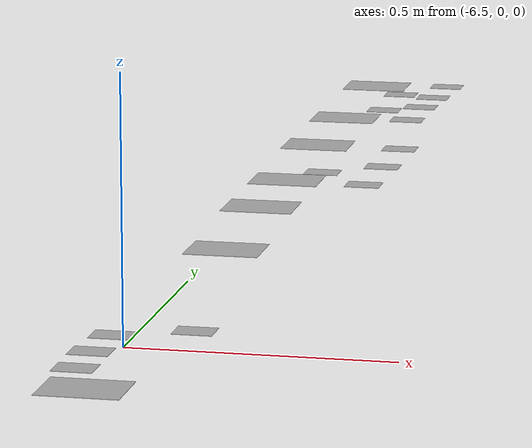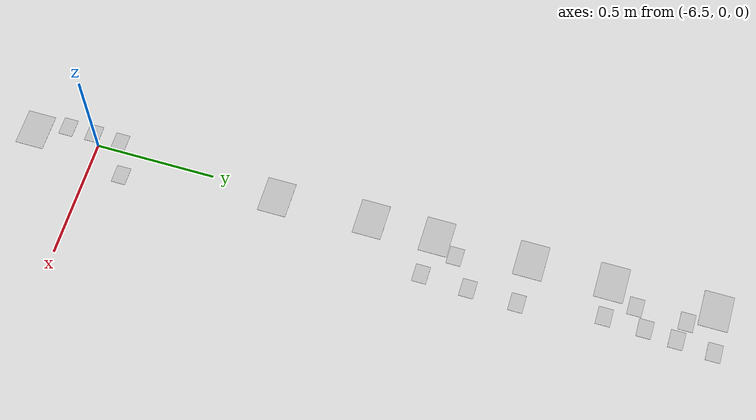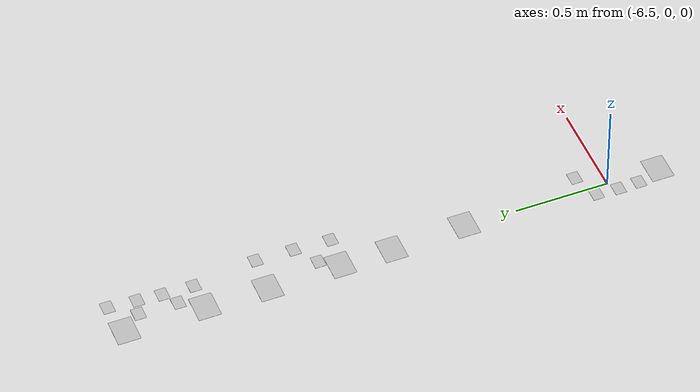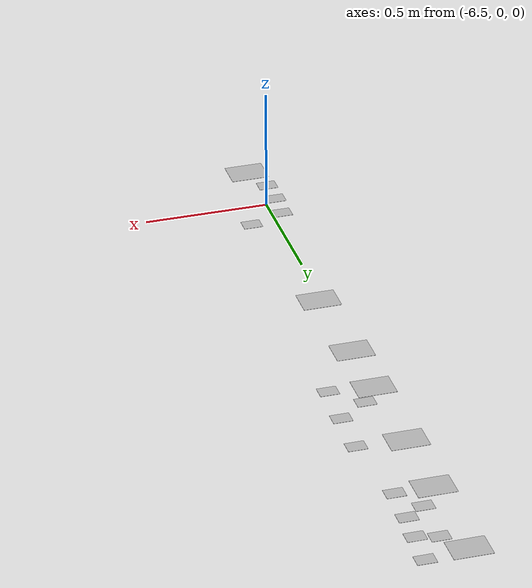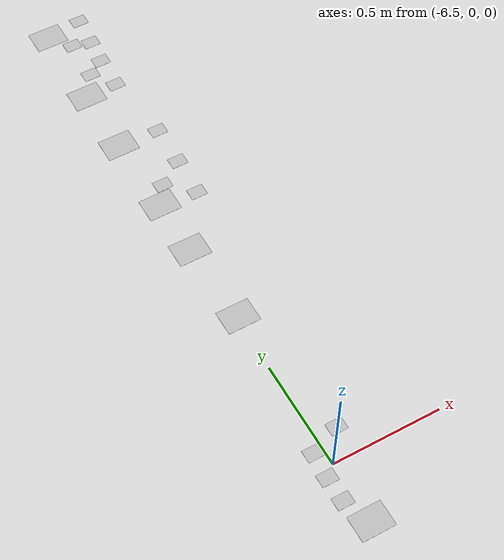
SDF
<sdf version="1.4">
 <world name="default">
  <model name="atags4_0">
   <static>1</static>
   <link name="link">
    <collision name="collision"><geometry><box><size>0.15275 0.11825 0.001</size></box></geometry></collision>
    <visual name="visual">
     <geometry><box><size>0.15275 0.11825 0.001</size></box></geometry>
     <material>
      <script>
       <uri>model://atags4_0/materials/scripts</uri>
       <uri>model://atags4_0/materials/textures</uri>
       <name>atags4_0/Diffuse</name>
      </script>
     </material>
    </visual>
    <velocity_decay><linear>0</linear><angular>0</angular></velocity_decay>
   </link>
   <pose>-6.50739 1.83276 0 0 -0 0</pose>
  </model>
  <model name="atags4_2">
   <static>1</static>
   <link name="link">
    <collision name="collision"><geometry><box><size>0.15275 0.11825 0.001</size></box></geometry></collision>
    <visual name="visual">
     <geometry><box><size>0.15275 0.11825 0.001</size></box></geometry>
     <material>
      <script>
       <uri>model://atags4_2/materials/scripts</uri>
       <uri>model://atags4_2/materials/textures</uri>
       <name>atags4_2/Diffuse</name>
      </script>
     </material>
    </visual>
    <velocity_decay><linear>0</linear><angular>0</angular></velocity_decay>
   </link>
   <pose>-6.50379 2.57978 0 0 -0 0</pose>
  </model>
  <model name="atags4_10">
   <static>1</static>
   <link name="link">
    <collision name="collision"><geometry><box><size>0.15275 0.11825 0.001</size></box></geometry></collision>
    <visual name="visual">
     <geometry><box><size>0.15275 0.11825 0.001</size></box></geometry>
     <material>
      <script>
       <uri>model://atags4_10/materials/scripts</uri>
       <uri>model://atags4_10/materials/textures</uri>
       <name>atags4_10/Diffuse</name>
      </script>
     </material>
    </visual>
    <velocity_decay><linear>0</linear><angular>0</angular></velocity_decay>
   </link>
   <pose>-6.48634 0.776049 0 0 -0 0</pose>
  </model>
  <model name="atags4_11">
   <static>1</static>
   <link name="link">
    <collision name="collision"><geometry><box><size>0.15275 0.11825 0.001</size></box></geometry></collision>
    <visual name="visual">
     <geometry><box><size>0.15275 0.11825 0.001</size></box></geometry>
     <material>
      <script>
       <uri>model://atags4_11/materials/scripts</uri>
       <uri>model://atags4_11/materials/textures</uri>
       <name>atags4_11/Diffuse</name>
      </script>
     </material>
    </visual>
    <velocity_decay><linear>0</linear><angular>0</angular></velocity_decay>
   </link>
   <pose>-6.50017 1.17166 0 0 -0 0</pose>
  </model>
  <model name="atags4_12">
   <static>1</static>
   <link name="link">
    <collision name="collision"><geometry><box><size>0.15275 0.11825 0.001</size></box></geometry></collision>
    <visual name="visual">
     <geometry><box><size>0.15275 0.11825 0.001</size></box></geometry>
     <material>
      <script>
       <uri>model://atags4_12/materials/scripts</uri>
       <uri>model://atags4_12/materials/textures</uri>
       <name>atags4_12/Diffuse</name>
      </script>
     </material>
    </visual>
    <velocity_decay><linear>0</linear><angular>0</angular></velocity_decay>
   </link>
   <pose>-6.49772 -0.276388 0 0 -0 0</pose>
  </model>
  <model name="atags4_13">
   <static>1</static>
   <link name="link">
    <collision name="collision"><geometry><box><size>0.15275 0.11825 0.001</size></box></geometry></collision>
    <visual name="visual">
     <geometry><box><size>0.15275 0.11825 0.001</size></box></geometry>
     <material>
      <script>
       <uri>model://atags4_13/materials/scripts</uri>
       <uri>model://atags4_13/materials/textures</uri>
       <name>atags4_13/Diffuse</name>
      </script>
     </material>
    </visual>
    <velocity_decay><linear>0</linear><angular>0</angular></velocity_decay>
   </link>
   <pose>-6.50576 2.16188 0 0 -0 0</pose>
  </model>
  <model name="atags4_15">
   <static>1</static>
   <link name="link">
    <collision name="collision"><geometry><box><size>0.15275 0.11825 0.001</size></box></geometry></collision>
    <visual name="visual">
     <geometry><box><size>0.15275 0.11825 0.001</size></box></geometry>
     <material>
      <script>
       <uri>model://atags4_15/materials/scripts</uri>
       <uri>model://atags4_15/materials/textures</uri>
       <name>atags4_15/Diffuse</name>
      </script>
     </material>
    </visual>
    <velocity_decay><linear>0</linear><angular>0</angular></velocity_decay>
   </link>
   <pose>-6.50057 1.44615 0 0 -0 0</pose>
  </model>
  <model name="at192">
   <static>1</static>
   <link name="link">
    <collision name="collision"><geometry><box><size>0.0763 0.05912 0.001</size></box></geometry></collision>
    <visual name="visual">
     <geometry><box><size>0.0763 0.05912 0.001</size></box></geometry>
     <material>
      <script>
       <uri>model://at192/materials/scripts</uri>
       <uri>model://at192/materials/textures</uri>
       <name>at192/Diffuse</name>
      </script>
     </material>
    </visual>
    <velocity_decay><linear>0</linear><angular>0</angular></velocity_decay>
   </link>
   <pose>-6.40019 0.136024 0 0 -0 0</pose>
  </model>
  <model name="at193">
   <static>1</static>
   <link name="link">
    <collision name="collision"><geometry><box><size>0.0763 0.05912 0.001</size></box></geometry></collision>
    <visual name="visual">
     <geometry><box><size>0.0763 0.05912 0.001</size></box></geometry>
     <material>
      <script>
       <uri>model://at193/materials/scripts</uri>
       <uri>model://at193/materials/textures</uri>
       <name>at193/Diffuse</name>
      </script>
     </material>
    </visual>
    <velocity_decay><linear>0</linear><angular>0</angular></velocity_decay>
   </link>
   <pose>-6.54768 -0.15111 0 0 -0 0</pose>
  </model>
  <model name="at207">
   <static>1</static>
   <link name="link">
    <collision name="collision"><geometry><box><size>0.0763 0.05912 0.001</size></box></geometry></collision>
    <visual name="visual">
     <geometry><box><size>0.0763 0.05912 0.001</size></box></geometry>
     <material>
      <script>
       <uri>model://at207/materials/scripts</uri>
       <uri>model://at207/materials/textures</uri>
       <name>at207/Diffuse</name>
      </script>
     </material>
    </visual>
    <velocity_decay><linear>0</linear><angular>0</angular></velocity_decay>
   </link>
   <pose>-6.54944 -0.038504 0 0 -0 0</pose>
  </model>
  <model name="at217">
   <static>1</static>
   <link name="link">
    <collision name="collision"><geometry><box><size>0.0763 0.05912 0.001</size></box></geometry></collision>
    <visual name="visual">
     <geometry><box><size>0.0763 0.05912 0.001</size></box></geometry>
     <material>
      <script>
       <uri>model://at217/materials/scripts</uri>
       <uri>model://at217/materials/textures</uri>
       <name>at217/Diffuse</name>
      </script>
     </material>
    </visual>
    <velocity_decay><linear>0</linear><angular>0</angular></velocity_decay>
   </link>
   <pose>-6.54183 0.079325 0 0 -0 0</pose>
  </model>
  <model name="at218">
   <static>1</static>
   <link name="link">
    <collision name="collision"><geometry><box><size>0.0763 0.05912 0.001</size></box></geometry></collision>
    <visual name="visual">
     <geometry><box><size>0.0763 0.05912 0.001</size></box></geometry>
     <material>
      <script>
       <uri>model://at218/materials/scripts</uri>
       <uri>model://at218/materials/textures</uri>
       <name>at218/Diffuse</name>
      </script>
     </material>
    </visual>
    <velocity_decay><linear>0</linear><angular>0</angular></velocity_decay>
   </link>
   <pose>-6.35594 2.16484 0 0 -0 0</pose>
  </model>
  <model name="at219">
   <static>1</static>
   <link name="link">
    <collision name="collision"><geometry><box><size>0.0763 0.05912 0.001</size></box></geometry></collision>
    <visual name="visual">
     <geometry><box><size>0.0763 0.05912 0.001</size></box></geometry>
     <material>
      <script>
       <uri>model://at219/materials/scripts</uri>
       <uri>model://at219/materials/textures</uri>
       <name>at219/Diffuse</name>
      </script>
     </material>
    </visual>
    <velocity_decay><linear>0</linear><angular>0</angular></velocity_decay>
   </link>
   <pose>-6.34088 2.45639 0 0 -0 0</pose>
  </model>
  <model name="at235">
   <static>1</static>
   <link name="link">
    <collision name="collision"><geometry><box><size>0.0763 0.05912 0.001</size></box></geometry></collision>
    <visual name="visual">
     <geometry><box><size>0.0763 0.05912 0.001</size></box></geometry>
     <material>
      <script>
       <uri>model://at235/materials/scripts</uri>
       <uri>model://at235/materials/textures</uri>
       <name>at235/Diffuse</name>
      </script>
     </material>
    </visual>
    <velocity_decay><linear>0</linear><angular>0</angular></velocity_decay>
   </link>
   <pose>-6.31451 1.8235 0 0 -0 0</pose>
  </model>
  <model name="at239">
   <static>1</static>
   <link name="link">
    <collision name="collision"><geometry><box><size>0.0763 0.05912 0.001</size></box></geometry></collision>
    <visual name="visual">
     <geometry><box><size>0.0763 0.05912 0.001</size></box></geometry>
     <material>
      <script>
       <uri>model://at239/materials/scripts</uri>
       <uri>model://at239/materials/textures</uri>
       <name>at239/Diffuse</name>
      </script>
     </material>
    </visual>
    <velocity_decay><linear>0</linear><angular>0</angular></velocity_decay>
   </link>
   <pose>-6.32623 1.42842 0 0 -0 0</pose>
  </model>
  <model name="at246">
   <static>1</static>
   <link name="link">
    <collision name="collision"><geometry><box><size>0.0763 0.05912 0.001</size></box></geometry></collision>
    <visual name="visual">
     <geometry><box><size>0.0763 0.05912 0.001</size></box></geometry>
     <material>
      <script>
       <uri>model://at246/materials/scripts</uri>
       <uri>model://at246/materials/textures</uri>
       <name>at246/Diffuse</name>
      </script>
     </material>
    </visual>
    <velocity_decay><linear>0</linear><angular>0</angular></velocity_decay>
   </link>
   <pose>-6.33027 2.60623 0 0 -0 0</pose>
  </model>
  <model name="at248">
   <static>1</static>
   <link name="link">
    <collision name="collision"><geometry><box><size>0.0763 0.05912 0.001</size></box></geometry></collision>
    <visual name="visual">
     <geometry><box><size>0.0763 0.05912 0.001</size></box></geometry>
     <material>
      <script>
       <uri>model://at248/materials/scripts</uri>
       <uri>model://at248/materials/textures</uri>
       <name>at248/Diffuse</name>
      </script>
     </material>
    </visual>
    <velocity_decay><linear>0</linear><angular>0</angular></velocity_decay>
   </link>
   <pose>-6.43129 2.27408 0 0 -0 0</pose>
  </model>
  <model name="at249">
   <static>1</static>
   <link name="link">
    <collision name="collision"><geometry><box><size>0.0763 0.05912 0.001</size></box></geometry></collision>
    <visual name="visual">
     <geometry><box><size>0.0763 0.05912 0.001</size></box></geometry>
     <material>
      <script>
       <uri>model://at249/materials/scripts</uri>
       <uri>model://at249/materials/textures</uri>
       <name>at249/Diffuse</name>
      </script>
     </material>
    </visual>
    <velocity_decay><linear>0</linear><angular>0</angular></velocity_decay>
   </link>
   <pose>-6.3185 1.62305 0 0 -0 0</pose>
  </model>
  <model name="at250">
   <static>1</static>
   <link name="link">
    <collision name="collision"><geometry><box><size>0.0763 0.05912 0.001</size></box></geometry></collision>
    <visual name="visual">
     <geometry><box><size>0.0763 0.05912 0.001</size></box></geometry>
     <material>
      <script>
       <uri>model://at250/materials/scripts</uri>
       <uri>model://at250/materials/textures</uri>
       <name>at250/Diffuse</name>
      </script>
     </material>
    </visual>
    <velocity_decay><linear>0</linear><angular>0</angular></velocity_decay>
   </link>
   <pose>-6.43923 1.53846 0 0 -0 0</pose>
  </model>
  <model name="at252">
   <static>1</static>
   <link name="link">
    <collision name="collision"><geometry><box><size>0.0763 0.05912 0.001</size></box></geometry></collision>
    <visual name="visual">
     <geometry><box><size>0.0763 0.05912 0.001</size></box></geometry>
     <material>
      <script>
       <uri>model://at252/materials/scripts</uri>
       <uri>model://at252/materials/textures</uri>
       <name>at252/Diffuse</name>
      </script>
     </material>
    </visual>
    <velocity_decay><linear>0</linear><angular>0</angular></velocity_decay>
   </link>
   <pose>-6.4256 2.47914 0 0 -0 0</pose>
  </model>
  <model name="at255">
   <static>1</static>
   <link name="link">
    <collision name="collision"><geometry><box><size>0.0763 0.05912 0.001</size></box></geometry></collision>
    <visual name="visual">
     <geometry><box><size>0.0763 0.05912 0.001</size></box></geometry>
     <material>
      <script>
       <uri>model://at255/materials/scripts</uri>
       <uri>model://at255/materials/textures</uri>
       <name>at255/Diffuse</name>
      </script>
     </material>
    </visual>
    <velocity_decay><linear>0</linear><angular>0</angular></velocity_decay>
   </link>
   <pose>-6.35094 2.32827 0 0 -0 0</pose>
  </model>
 </world>
</sdf>
